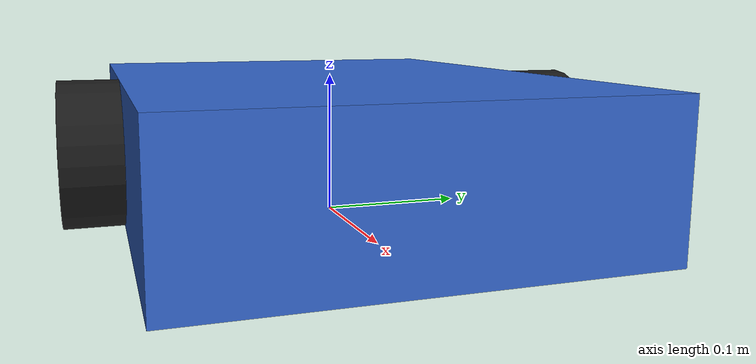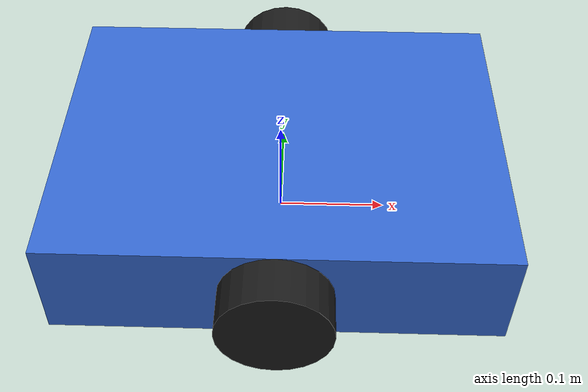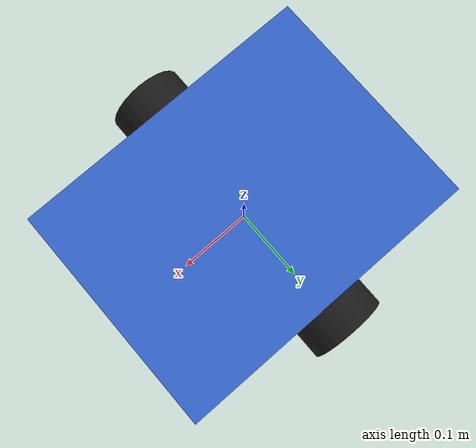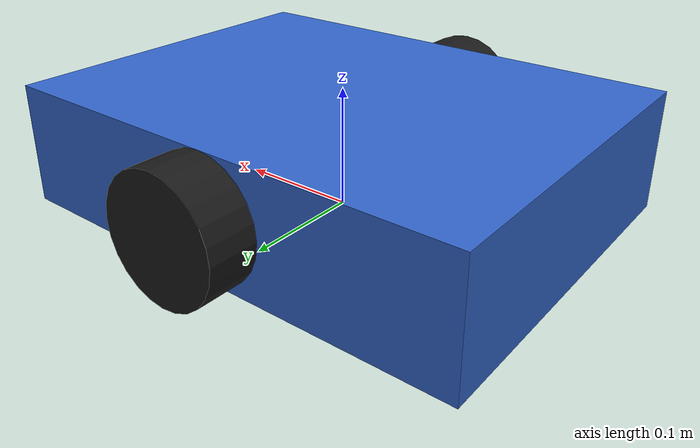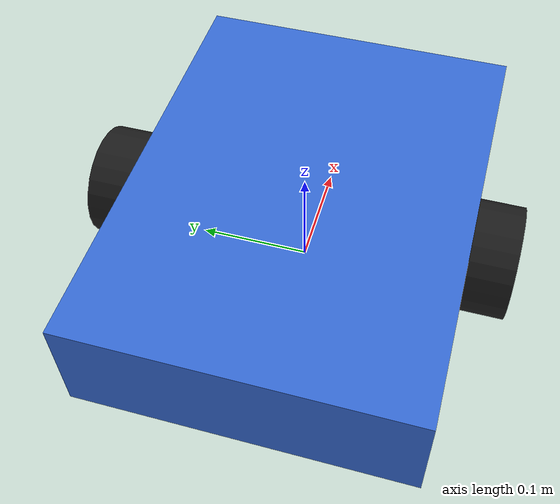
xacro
<?xml version="1.0"?>
<robot name="demo_bot" xmlns:xacro="http://www.ros.org/wiki/xacro">
  <xacro:arg name="controllers_file" default=""/>
  <xacro:arg name="use_sim_time" default="true"/>

  <xacro:property name="demo_pi" value="3.1415926535897931"/>
  <xacro:property name="base_length" value="0.40"/>
  <xacro:property name="base_width" value="0.30"/>
  <xacro:property name="base_height" value="0.10"/>
  <xacro:property name="base_mass" value="8.0"/>
  <xacro:property name="wheel_radius" value="0.05"/>
  <xacro:property name="wheel_width" value="0.04"/>
  <xacro:property name="wheel_mass" value="0.6"/>
  <xacro:property name="wheel_y_offset" value="0.17"/>
  <xacro:property name="wheel_z_offset" value="0.05"/>
  <xacro:property name="caster_radius" value="0.03"/>

  <material name="black">
    <color rgba="0.1 0.1 0.1 1.0"/>
  </material>

  <material name="blue">
    <color rgba="0.2 0.4 0.8 1.0"/>
  </material>

  <material name="gray">
    <color rgba="0.7 0.7 0.7 1.0"/>
  </material>

  <xacro:macro name="box_inertia" params="mass x y z">
    <inertial>
      <mass value="${mass}"/>
      <origin xyz="0 0 0" rpy="0 0 0"/>
      <inertia
        ixx="${mass * (y * y + z * z) / 12.0}"
        ixy="0.0"
        ixz="0.0"
        iyy="${mass * (x * x + z * z) / 12.0}"
        iyz="0.0"
        izz="${mass * (x * x + y * y) / 12.0}"/>
    </inertial>
  </xacro:macro>

  <xacro:macro name="cylinder_inertia" params="mass radius length">
    <inertial>
      <mass value="${mass}"/>
      <origin xyz="0 0 0" rpy="0 0 0"/>
      <inertia
        ixx="${mass * (3.0 * radius * radius + length * length) / 12.0}"
        ixy="0.0"
        ixz="0.0"
        iyy="${mass * (3.0 * radius * radius + length * length) / 12.0}"
        iyz="0.0"
        izz="${mass * radius * radius / 2.0}"/>
    </inertial>
  </xacro:macro>

  <xacro:macro name="sphere_inertia" params="mass radius">
    <inertial>
      <mass value="${mass}"/>
      <origin xyz="0 0 0" rpy="0 0 0"/>
      <inertia
        ixx="${2.0 * mass * radius * radius / 5.0}"
        ixy="0.0"
        ixz="0.0"
        iyy="${2.0 * mass * radius * radius / 5.0}"
        iyz="0.0"
        izz="${2.0 * mass * radius * radius / 5.0}"/>
    </inertial>
  </xacro:macro>

  <link name="base_link">
    <visual>
      <origin xyz="0 0 ${base_height / 2.0}" rpy="0 0 0"/>
      <geometry>
        <box size="${base_length} ${base_width} ${base_height}"/>
      </geometry>
      <material name="blue"/>
    </visual>
    <collision>
      <origin xyz="0 0 ${base_height / 2.0}" rpy="0 0 0"/>
      <geometry>
        <box size="${base_length} ${base_width} ${base_height}"/>
      </geometry>
    </collision>
    <xacro:box_inertia mass="${base_mass}" x="${base_length}" y="${base_width}" z="${base_height}"/>
  </link>

  <link name="left_wheel_link">
    <visual>
      <origin xyz="0 0 0" rpy="${demo_pi / 2.0} 0 0"/>
      <geometry>
        <cylinder radius="${wheel_radius}" length="${wheel_width}"/>
      </geometry>
      <material name="black"/>
    </visual>
    <collision>
      <origin xyz="0 0 0" rpy="${demo_pi / 2.0} 0 0"/>
      <geometry>
        <cylinder radius="${wheel_radius}" length="${wheel_width}"/>
      </geometry>
    </collision>
    <xacro:cylinder_inertia mass="${wheel_mass}" radius="${wheel_radius}" length="${wheel_width}"/>
  </link>

  <link name="right_wheel_link">
    <visual>
      <origin xyz="0 0 0" rpy="${demo_pi / 2.0} 0 0"/>
      <geometry>
        <cylinder radius="${wheel_radius}" length="${wheel_width}"/>
      </geometry>
      <material name="black"/>
    </visual>
    <collision>
      <origin xyz="0 0 0" rpy="${demo_pi / 2.0} 0 0"/>
      <geometry>
        <cylinder radius="${wheel_radius}" length="${wheel_width}"/>
      </geometry>
    </collision>
    <xacro:cylinder_inertia mass="${wheel_mass}" radius="${wheel_radius}" length="${wheel_width}"/>
  </link>

  <link name="front_caster_link">
    <visual>
      <origin xyz="0 0 0" rpy="0 0 0"/>
      <geometry>
        <sphere radius="${caster_radius}"/>
      </geometry>
      <material name="gray"/>
    </visual>
    <collision>
      <origin xyz="0 0 0" rpy="0 0 0"/>
      <geometry>
        <sphere radius="${caster_radius}"/>
      </geometry>
    </collision>
    <xacro:sphere_inertia mass="0.2" radius="${caster_radius}"/>
  </link>

  <link name="rear_caster_link">
    <visual>
      <origin xyz="0 0 0" rpy="0 0 0"/>
      <geometry>
        <sphere radius="${caster_radius}"/>
      </geometry>
      <material name="gray"/>
    </visual>
    <collision>
      <origin xyz="0 0 0" rpy="0 0 0"/>
      <geometry>
        <sphere radius="${caster_radius}"/>
      </geometry>
    </collision>
    <xacro:sphere_inertia mass="0.2" radius="${caster_radius}"/>
  </link>

  <joint name="left_wheel_joint" type="continuous">
    <parent link="base_link"/>
    <child link="left_wheel_link"/>
    <origin xyz="0 ${wheel_y_offset} ${wheel_z_offset}" rpy="0 0 0"/>
    <axis xyz="0 1 0"/>
  </joint>

  <joint name="right_wheel_joint" type="continuous">
    <parent link="base_link"/>
    <child link="right_wheel_link"/>
    <origin xyz="0 ${-wheel_y_offset} ${wheel_z_offset}" rpy="0 0 0"/>
    <axis xyz="0 1 0"/>
  </joint>

  <joint name="front_caster_joint" type="fixed">
    <parent link="base_link"/>
    <child link="front_caster_link"/>
    <origin xyz="${base_length / 2.5} 0 ${caster_radius}" rpy="0 0 0"/>
  </joint>

  <joint name="rear_caster_joint" type="fixed">
    <parent link="base_link"/>
    <child link="rear_caster_link"/>
    <origin xyz="${-base_length / 2.5} 0 ${caster_radius}" rpy="0 0 0"/>
  </joint>

  <ros2_control name="GazeboSimSystem" type="system">
    <hardware>
      <plugin>gz_ros2_control/GazeboSimSystem</plugin>
    </hardware>

    <joint name="left_wheel_joint">
      <command_interface name="velocity"/>
      <state_interface name="position"/>
      <state_interface name="velocity"/>
    </joint>

    <joint name="right_wheel_joint">
      <command_interface name="velocity"/>
      <state_interface name="position"/>
      <state_interface name="velocity"/>
    </joint>
  </ros2_control>

  <gazebo>
    <plugin filename="gz_ros2_control-system" name="gz_ros2_control::GazeboSimROS2ControlPlugin">
      <parameters>$(arg controllers_file)</parameters>
    </plugin>
  </gazebo>

  <gazebo reference="left_wheel_link">
    <mu1>1.5</mu1>
    <mu2>1.5</mu2>
  </gazebo>

  <gazebo reference="right_wheel_link">
    <mu1>1.5</mu1>
    <mu2>1.5</mu2>
  </gazebo>
</robot>
